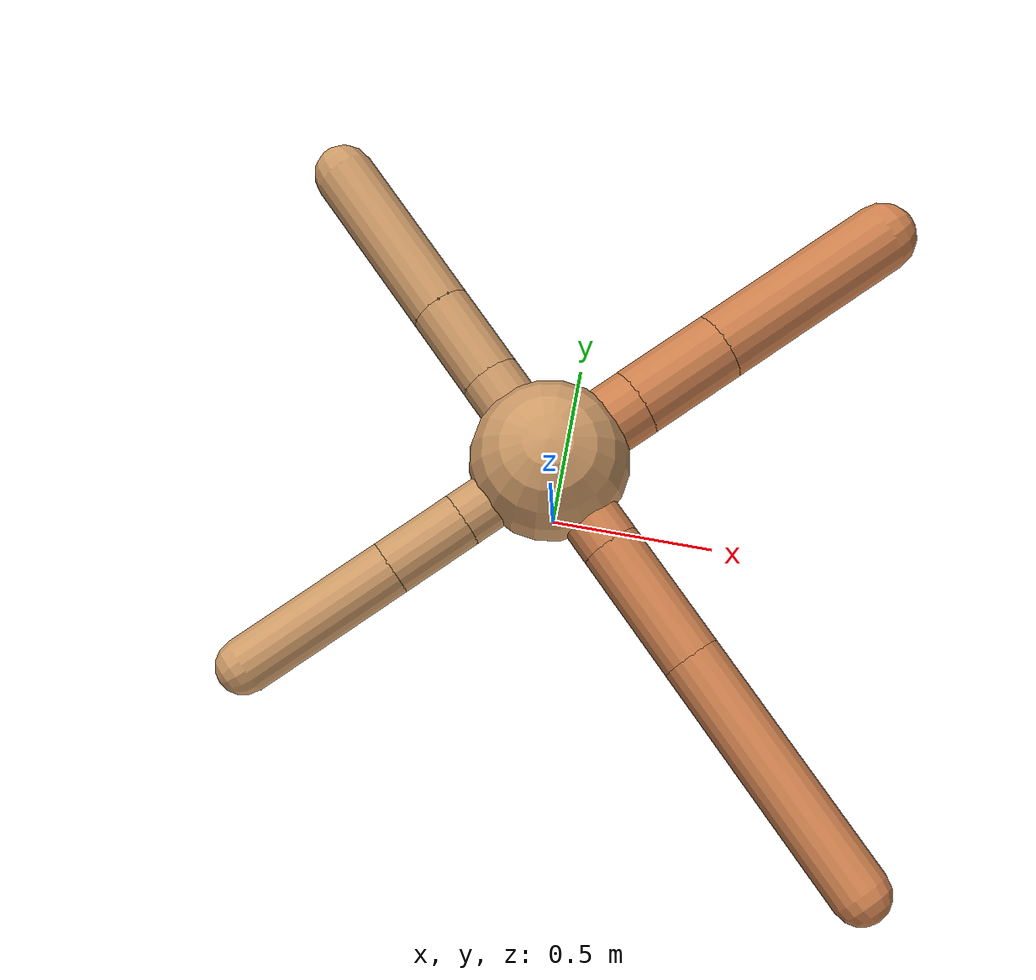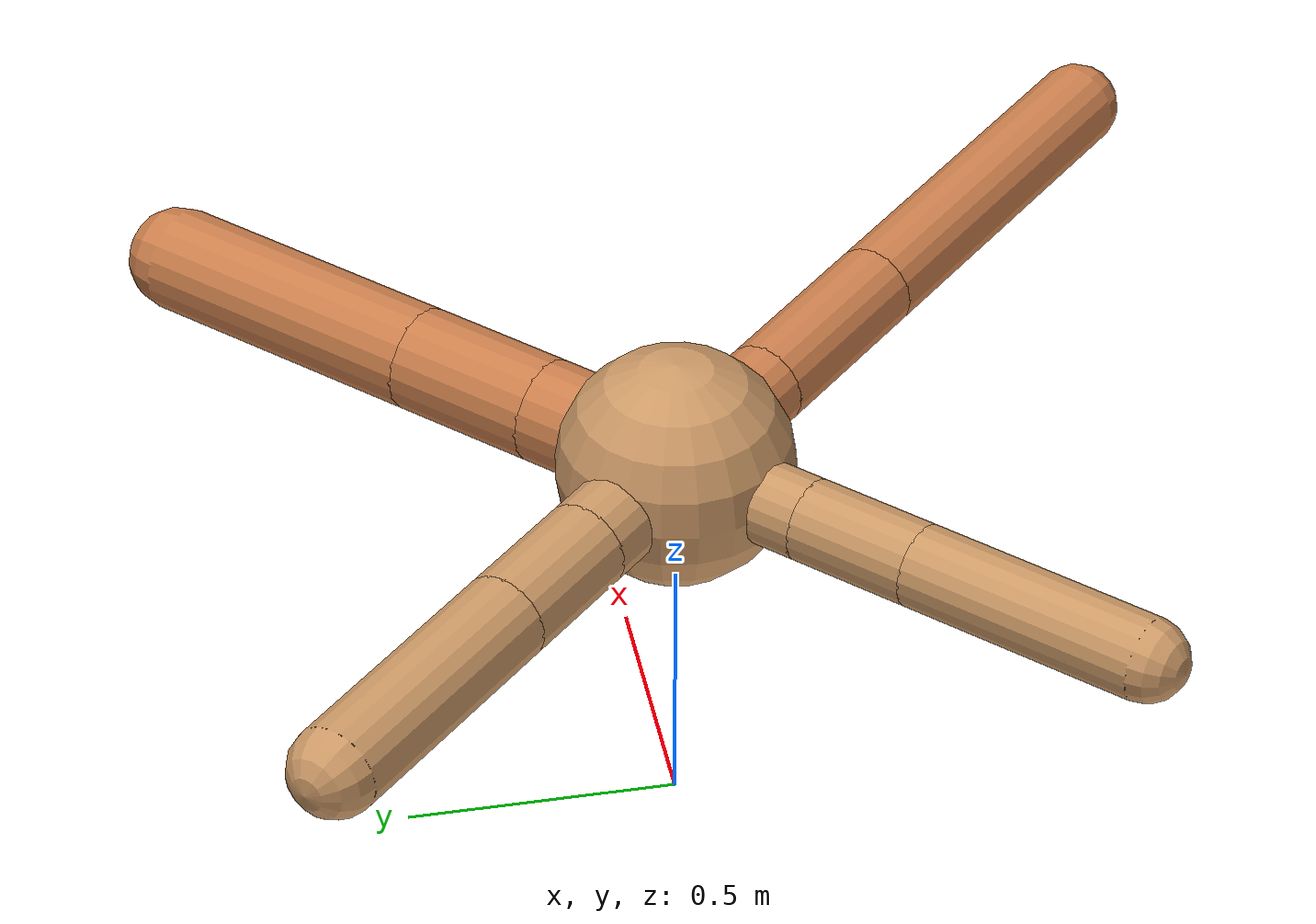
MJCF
<?xml version="1.0" ?>
<mujoco model="ant">

	<compiler angle="degree" coordinate="local" inertiafromgeom="true"/>

	<option integrator="RK4" timestep="0.01"/>

	<custom>

		<numeric data="0.0 0.0 0.55 1.0 0.0 0.0 0.0 0.0 1.0 0.0 -1.0 0.0 -1.0 0.0 1.0" name="init_qpos"/>

	</custom>

	<default>

		<joint armature="1" damping="1" limited="true"/>

		<geom conaffinity="0" condim="3" density="5.0" friction="1.5 0.1 0.1" margin="0.01" rgba="0.8 0.6 0.4 1"/>

	</default>

	<worldbody>

		<body name="torso" pos="0 0 0.75">

			<geom name="torso_geom" pos="0 0 0" size="0.2172642138165456" type="sphere"/>

			<!--joint armature="0" damping="0" limited="false" margin="0.01" name="root" pos="0 0 0" type="free"/-->

			<body name="front_left_leg" pos="0 0 0">

				<geom fromto="0 0 0 0.2 0.2 0" name="aux_1_geom" size="0.0967952437434111" type="capsule" rgba=".8 .5 .3 1"/>

				<body name="aux_1" pos="0.2 0.2 0">

					<joint axis="0 0 1" name="hip_1" pos="0.0 0.0 0.0" range="-40 40" type="hinge"/>

					<geom fromto="0 0 0 0.19628748314915279 0.19628748314915279 0" name="left_leg_geom" size="0.0967952437434111" type="capsule" rgba=".8 .5 .3 1"/>

					<body pos="0.19628748314915279 0.19628748314915279 0" name="front_left_foot">

						<joint axis="-1 1 0" name="ankle_1" pos="0.0 0.0 0.0" range="30 100" type="hinge"/>

						<geom fromto="0 0 0 0.39257496629830557 0.39257496629830557 0" name="left_ankle_geom" size="0.0967952437434111" type="capsule" rgba=".8 .5 .3 1"/>

					</body>

				</body>

			</body>

			<body name="front_right_leg" pos="0 0 0">

				<geom fromto="0 0 0 -0.2 0.2 0" name="aux_2_geom" size="0.08409386017099585" type="capsule"/>

				<body name="aux_2" pos="-0.2 0.2 0">

					<joint axis="0 0 1" name="hip_2" pos="0.0 0.0 0.0" range="-40 40" type="hinge"/>

					<geom fromto="0 0 0 -0.17020869492325075 0.17020869492325075 0" name="right_leg_geom" size="0.08409386017099585" type="capsule"/>

					<body pos="-0.17020869492325075 0.17020869492325075 0" name="front_right_foot">

						<joint axis="1 1 0" name="ankle_2" pos="0.0 0.0 0.0" range="-100 -30" type="hinge"/>

						<geom fromto="0 0 0 -0.3404173898465015 0.3404173898465015 0" name="right_ankle_geom" size="0.08409386017099585" type="capsule"/>

					</body>

				</body>

			</body>

			<body name="left_back_leg" pos="0 0 0">

				<geom fromto="0 0 0 -0.2 -0.2 0" name="aux_3_geom" size="0.07633993572298883" type="capsule"/>

				<body name="aux_3" pos="-0.2 -0.2 0">

					<joint axis="0 0 1" name="hip_3" pos="0.0 0.0 0.0" range="-40 40" type="hinge"/>

					<geom fromto="0 0 0 -0.16085938974520392 -0.16085938974520392 0" name="back_leg_geom" size="0.07633993572298883" type="capsule"/>

					<body pos="-0.16085938974520392 -0.16085938974520392 0" name="left_back_foot">

						<joint axis="-1 1 0" name="ankle_3" pos="0.0 0.0 0.0" range="-100 -30" type="hinge"/>

						<geom fromto="0 0 0 -0.32171877949040784 -0.32171877949040784 0" name="third_ankle_geom" size="0.07633993572298883" type="capsule"/>

					</body>

				</body>

			</body>

			<body name="right_back_leg" pos="0 0 0">

				<geom fromto="0 0 0 0.2 -0.2 0" name="aux_4_geom" size="0.08138186221043936" type="capsule" rgba=".8 .5 .3 1"/>

				<body name="aux_4" pos="0.2 -0.2 0">

					<joint axis="0 0 1" name="hip_4" pos="0.0 0.0 0.0" range="-40 40" type="hinge"/>

					<geom fromto="0 0 0 0.2585274842098841 -0.2585274842098841 0" name="rightback_leg_geom" size="0.08138186221043936" type="capsule" rgba=".8 .5 .3 1"/>

					<body pos="0.2585274842098841 -0.2585274842098841 0" name="right_back_foot">

						<joint axis="1 1 0" name="ankle_4" pos="0.0 0.0 0.0" range="30 100" type="hinge"/>

						<geom fromto="0 0 0 0.5170549684197682 -0.5170549684197682 0" name="fourth_ankle_geom" size="0.08138186221043936" type="capsule" rgba=".8 .5 .3 1"/>

					</body>

				</body>

			</body>

		</body>

	</worldbody>

	<actuator>

		<motor ctrllimited="true" ctrlrange="-1.0 1.0" joint="hip_4" gear="150"/>

		<motor ctrllimited="true" ctrlrange="-1.0 1.0" joint="ankle_4" gear="150"/>

		<motor ctrllimited="true" ctrlrange="-1.0 1.0" joint="hip_1" gear="150"/>

		<motor ctrllimited="true" ctrlrange="-1.0 1.0" joint="ankle_1" gear="150"/>

		<motor ctrllimited="true" ctrlrange="-1.0 1.0" joint="hip_2" gear="150"/>

		<motor ctrllimited="true" ctrlrange="-1.0 1.0" joint="ankle_2" gear="150"/>

		<motor ctrllimited="true" ctrlrange="-1.0 1.0" joint="hip_3" gear="150"/>

		<motor ctrllimited="true" ctrlrange="-1.0 1.0" joint="ankle_3" gear="150"/>

	</actuator>

</mujoco>
